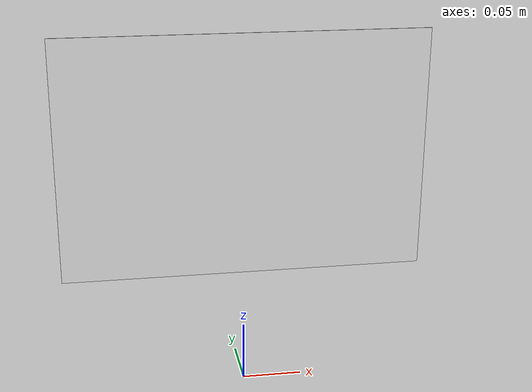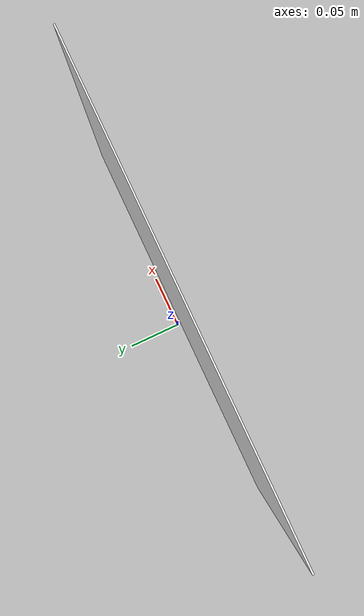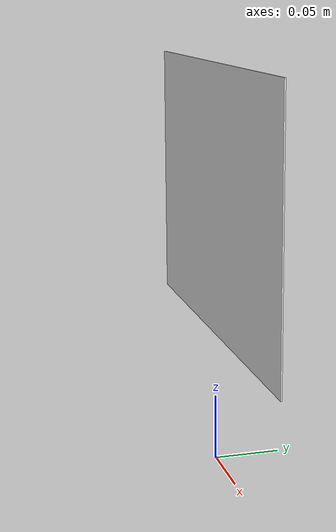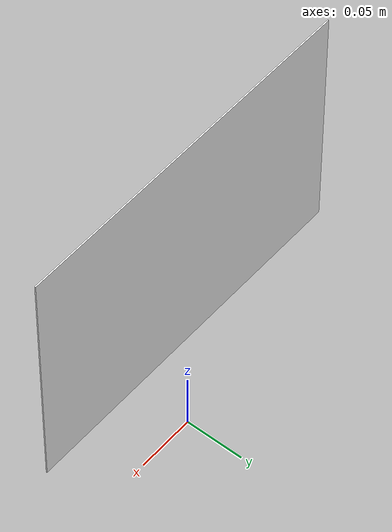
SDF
<?xml version="1.0" ?>
<sdf version="1.8">
  <model name="order_panel">
    <static>true</static>

    <link name="panel">
      <pose>0 -0.0005 0.2 0 0 0</pose>
      <visual name="visual">
        <geometry>
          <box>
            <size>0.3 0.001 0.2</size>
          </box>
        </geometry>
        <material>
            <pbr>
              <metal>
                <albedo_map>model://turtlebot3_autorace_2025/order_panel/materials/textures/order_image.png</albedo_map>
              </metal>
            </pbr>
          <ambient>1 1 1 1</ambient>
          <diffuse>1 1 1 1</diffuse>
        </material>
      </visual>
    </link>

  </model>
</sdf>
